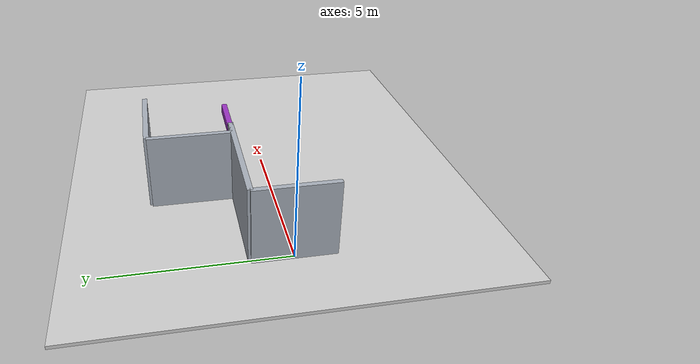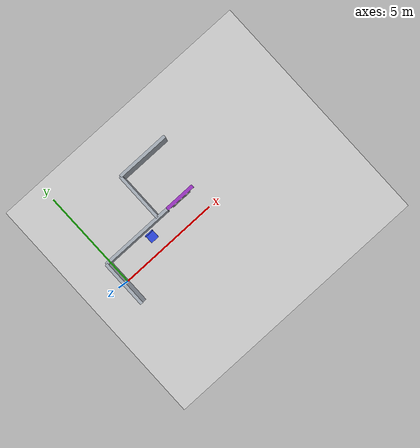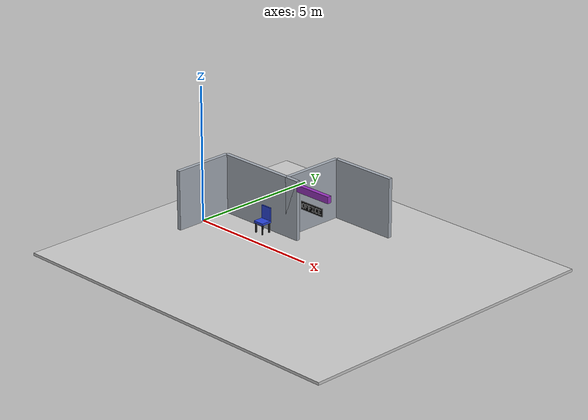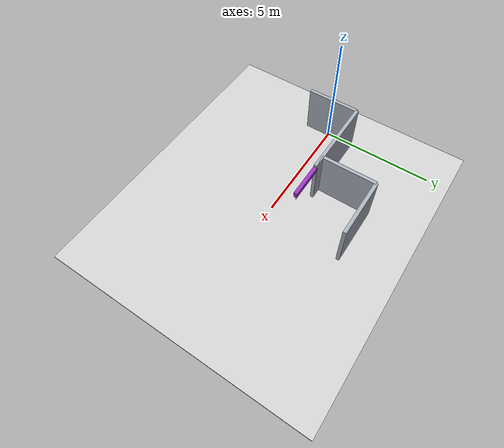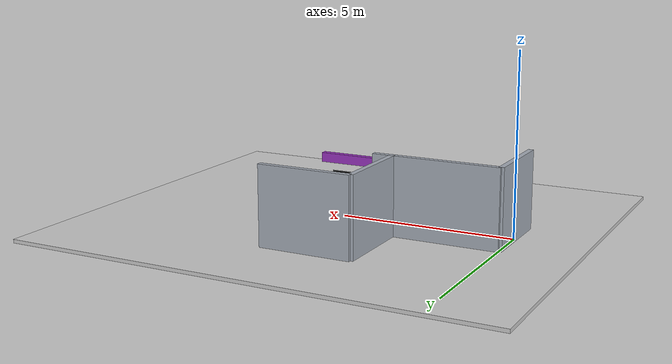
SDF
<sdf version="1.9">
 <world name="default">
  <model name="ground_plane">
   <static>true</static>
   <pose>4.85 0 -0.05 0 0 0</pose>
   <link name="body">
    <collision name="collision"><geometry><box><size>13.7 12 0.1</size></box></geometry></collision>
    <visual name="visual">
     <geometry><box><size>13.7 12 0.1</size></box></geometry>
     <material><ambient>0.8 0.8 0.8 1</ambient><diffuse>0.8 0.8 0.8 1</diffuse></material>
    </visual>
   </link>
  </model>
  <model name="start_wall">
   <static>true</static>
   <pose>0 0 1.1 0 0 0</pose>
   <link name="body">
    <collision name="collision"><geometry><box><size>0.15 2.3 2.2</size></box></geometry></collision>
    <visual name="visual">
     <geometry><box><size>0.15 2.3 2.2</size></box></geometry>
     <material><ambient>0.65 0.68 0.72 1</ambient><diffuse>0.65 0.68 0.72 1</diffuse></material>
    </visual>
   </link>
  </model>
  <model name="hall_1_1">
   <static>true</static>
   <pose>1.775 1.15 1.1 0 0 0</pose>
   <link name="body">
    <collision name="collision"><geometry><box><size>3.55 0.15 2.2</size></box></geometry></collision>
    <visual name="visual">
     <geometry><box><size>3.55 0.15 2.2</size></box></geometry>
     <material><ambient>0.65 0.68 0.72 1</ambient><diffuse>0.65 0.68 0.72 1</diffuse></material>
    </visual>
   </link>
  </model>
  <model name="room_1_1_-1">
   <static>true</static>
   <pose>3.0 2.3499999999999996 1.1 0 0 0</pose>
   <link name="body">
    <collision name="collision"><geometry><box><size>0.15 2.4 2.2</size></box></geometry></collision>
    <visual name="visual">
     <geometry><box><size>0.15 2.4 2.2</size></box></geometry>
     <material><ambient>0.65 0.68 0.72 1</ambient><diffuse>0.65 0.68 0.72 1</diffuse></material>
    </visual>
   </link>
  </model>
  <model name="room_end_1_1">
   <static>true</static>
   <pose>4.3 3.55 1.1 0 0 0</pose>
   <link name="body">
    <collision name="collision"><geometry><box><size>2.6 0.15 2.2</size></box></geometry></collision>
    <visual name="visual">
     <geometry><box><size>2.6 0.15 2.2</size></box></geometry>
     <material><ambient>0.65 0.68 0.72 1</ambient><diffuse>0.65 0.68 0.72 1</diffuse></material>
    </visual>
   </link>
  </model>
  <model name="jamb_1_1_-1">
   <static>true</static>
   <pose>3.275 1.15 1.1 0 0 0</pose>
   <link name="body">
    <collision name="collision"><geometry><box><size>0.55 0.15 2.2</size></box></geometry></collision>
    <visual name="visual">
     <geometry><box><size>0.55 0.15 2.2</size></box></geometry>
     <material><ambient>0.65 0.68 0.72 1</ambient><diffuse>0.65 0.68 0.72 1</diffuse></material>
    </visual>
   </link>
  </model>
  <model name="chair_seat">
   <static>true</static>
   <pose>2.2 0.7499999999999999 0.4 0 0 0</pose>
   <link name="body">
    <collision name="collision"><geometry><box><size>0.42 0.42 0.08</size></box></geometry></collision>
    <visual name="visual">
     <geometry><box><size>0.42 0.42 0.08</size></box></geometry>
     <material><ambient>0.16 0.27 0.86 1</ambient><diffuse>0.16 0.27 0.86 1</diffuse></material>
    </visual>
   </link>
  </model>
  <model name="chair_back">
   <static>true</static>
   <pose>2.2 0.94 0.67 0 0 0</pose>
   <link name="body">
    <collision name="collision"><geometry><box><size>0.42 0.05 0.5</size></box></geometry></collision>
    <visual name="visual">
     <geometry><box><size>0.42 0.05 0.5</size></box></geometry>
     <material><ambient>0.16 0.27 0.86 1</ambient><diffuse>0.16 0.27 0.86 1</diffuse></material>
    </visual>
   </link>
  </model>
  <model name="chair_leg_-0.16_-0.16">
   <static>true</static>
   <pose>2.04 0.5899999999999999 0.19 0 0 0</pose>
   <link name="body">
    <collision name="collision"><geometry><box><size>0.04 0.04 0.38</size></box></geometry></collision>
    <visual name="visual">
     <geometry><box><size>0.04 0.04 0.38</size></box></geometry>
     <material><ambient>0.2 0.2 0.2 1</ambient><diffuse>0.2 0.2 0.2 1</diffuse></material>
    </visual>
   </link>
  </model>
  <model name="chair_leg_-0.16_0.16">
   <static>true</static>
   <pose>2.04 0.9099999999999999 0.19 0 0 0</pose>
   <link name="body">
    <collision name="collision"><geometry><box><size>0.04 0.04 0.38</size></box></geometry></collision>
    <visual name="visual">
     <geometry><box><size>0.04 0.04 0.38</size></box></geometry>
     <material><ambient>0.2 0.2 0.2 1</ambient><diffuse>0.2 0.2 0.2 1</diffuse></material>
    </visual>
   </link>
  </model>
  <model name="chair_leg_0.16_-0.16">
   <static>true</static>
   <pose>2.3600000000000003 0.5899999999999999 0.19 0 0 0</pose>
   <link name="body">
    <collision name="collision"><geometry><box><size>0.04 0.04 0.38</size></box></geometry></collision>
    <visual name="visual">
     <geometry><box><size>0.04 0.04 0.38</size></box></geometry>
     <material><ambient>0.2 0.2 0.2 1</ambient><diffuse>0.2 0.2 0.2 1</diffuse></material>
    </visual>
   </link>
  </model>
  <model name="chair_leg_0.16_0.16">
   <static>true</static>
   <pose>2.3600000000000003 0.9099999999999999 0.19 0 0 0</pose>
   <link name="body">
    <collision name="collision"><geometry><box><size>0.04 0.04 0.38</size></box></geometry></collision>
    <visual name="visual">
     <geometry><box><size>0.04 0.04 0.38</size></box></geometry>
     <material><ambient>0.2 0.2 0.2 1</ambient><diffuse>0.2 0.2 0.2 1</diffuse></material>
    </visual>
   </link>
  </model>
  <model name="r3geo_base_r006_left_1_lintel">
   <static>true</static>
   <pose>4.3 1.15 1.95 0 0 0</pose>
   <link name="body">
    <collision name="collision"><geometry><box><size>1.5 0.16 0.25</size></box></geometry></collision>
    <visual name="visual">
     <geometry><box><size>1.5 0.16 0.25</size></box></geometry>
     <material><ambient>0.6 0.2 0.75 1</ambient><diffuse>0.6 0.2 0.75 1</diffuse></material>
    </visual>
   </link>
  </model>
  <model name="readable_r3geo_base_r006_left_1_entrance_corridor">
   <static>true</static>
   <pose>4.3 1.05 1.43 0 0 0</pose>
   <link name="lettering">
    <visual name="backboard">
     <geometry><box><size>1.02 0.018 0.3</size></box></geometry>
     <material>
      <ambient>.015 .015 .015 1</ambient>
      <diffuse>.015 .015 .015 1</diffuse>
      <emissive>.015 .015 .015 1</emissive>
     </material>
     <cast_shadows>false</cast_shadows>
    </visual>
    <visual name="letter_0_0_1">
     <pose>-0.416 -0.014 0.078 0 0 0</pose>
     <geometry><box><size>0.024439999999999996 0.008 0.024439999999999996</size></box></geometry>
     <material>
      <ambient>.96 .96 .96 1</ambient>
      <diffuse>.96 .96 .96 1</diffuse>
      <emissive>.96 .96 .96 1</emissive>
     </material>
     <cast_shadows>false</cast_shadows>
    </visual>
    <visual name="letter_0_0_2">
     <pose>-0.39 -0.014 0.078 0 0 0</pose>
     <geometry><box><size>0.024439999999999996 0.008 0.024439999999999996</size></box></geometry>
     <material>
      <ambient>.96 .96 .96 1</ambient>
      <diffuse>.96 .96 .96 1</diffuse>
      <emissive>.96 .96 .96 1</emissive>
     </material>
     <cast_shadows>false</cast_shadows>
    </visual>
    <visual name="letter_0_0_3">
     <pose>-0.364 -0.014 0.078 0 0 0</pose>
     <geometry><box><size>0.024439999999999996 0.008 0.024439999999999996</size></box></geometry>
     <material>
      <ambient>.96 .96 .96 1</ambient>
      <diffuse>.96 .96 .96 1</diffuse>
      <emissive>.96 .96 .96 1</emissive>
     </material>
     <cast_shadows>false</cast_shadows>
    </visual>
    <visual name="letter_0_1_0">
     <pose>-0.442 -0.014 0.052 0 0 0</pose>
     <geometry><box><size>0.024439999999999996 0.008 0.024439999999999996</size></box></geometry>
     <material>
      <ambient>.96 .96 .96 1</ambient>
      <diffuse>.96 .96 .96 1</diffuse>
      <emissive>.96 .96 .96 1</emissive>
     </material>
     <cast_shadows>false</cast_shadows>
    </visual>
    <visual name="letter_0_1_4">
     <pose>-0.338 -0.014 0.052 0 0 0</pose>
     <geometry><box><size>0.024439999999999996 0.008 0.024439999999999996</size></box></geometry>
     <material>
      <ambient>.96 .96 .96 1</ambient>
      <diffuse>.96 .96 .96 1</diffuse>
      <emissive>.96 .96 .96 1</emissive>
     </material>
     <cast_shadows>false</cast_shadows>
    </visual>
    <visual name="letter_0_2_0">
     <pose>-0.442 -0.014 0.026 0 0 0</pose>
     <geometry><box><size>0.024439999999999996 0.008 0.024439999999999996</size></box></geometry>
     <material>
      <ambient>.96 .96 .96 1</ambient>
      <diffuse>.96 .96 .96 1</diffuse>
      <emissive>.96 .96 .96 1</emissive>
     </material>
     <cast_shadows>false</cast_shadows>
    </visual>
    <visual name="letter_0_2_4">
     <pose>-0.338 -0.014 0.026 0 0 0</pose>
     <geometry><box><size>0.024439999999999996 0.008 0.024439999999999996</size></box></geometry>
     <material>
      <ambient>.96 .96 .96 1</ambient>
      <diffuse>.96 .96 .96 1</diffuse>
      <emissive>.96 .96 .96 1</emissive>
     </material>
     <cast_shadows>false</cast_shadows>
    </visual>
    <visual name="letter_0_3_0">
     <pose>-0.442 -0.014 0 0 0 0</pose>
     <geometry><box><size>0.024439999999999996 0.008 0.024439999999999996</size></box></geometry>
     <material>
      <ambient>.96 .96 .96 1</ambient>
      <diffuse>.96 .96 .96 1</diffuse>
      <emissive>.96 .96 .96 1</emissive>
     </material>
     <cast_shadows>false</cast_shadows>
    </visual>
    <visual name="letter_0_3_4">
     <pose>-0.338 -0.014 0 0 0 0</pose>
     <geometry><box><size>0.024439999999999996 0.008 0.024439999999999996</size></box></geometry>
     <material>
      <ambient>.96 .96 .96 1</ambient>
      <diffuse>.96 .96 .96 1</diffuse>
      <emissive>.96 .96 .96 1</emissive>
     </material>
     <cast_shadows>false</cast_shadows>
    </visual>
    <visual name="letter_0_4_0">
     <pose>-0.442 -0.014 -0.026 0 0 0</pose>
     <geometry><box><size>0.024439999999999996 0.008 0.024439999999999996</size></box></geometry>
     <material>
      <ambient>.96 .96 .96 1</ambient>
      <diffuse>.96 .96 .96 1</diffuse>
      <emissive>.96 .96 .96 1</emissive>
     </material>
     <cast_shadows>false</cast_shadows>
    </visual>
    <visual name="letter_0_4_4">
     <pose>-0.338 -0.014 -0.026 0 0 0</pose>
     <geometry><box><size>0.024439999999999996 0.008 0.024439999999999996</size></box></geometry>
     <material>
      <ambient>.96 .96 .96 1</ambient>
      <diffuse>.96 .96 .96 1</diffuse>
      <emissive>.96 .96 .96 1</emissive>
     </material>
     <cast_shadows>false</cast_shadows>
    </visual>
    <visual name="letter_0_5_0">
     <pose>-0.442 -0.014 -0.052 0 0 0</pose>
     <geometry><box><size>0.024439999999999996 0.008 0.024439999999999996</size></box></geometry>
     <material>
      <ambient>.96 .96 .96 1</ambient>
      <diffuse>.96 .96 .96 1</diffuse>
      <emissive>.96 .96 .96 1</emissive>
     </material>
     <cast_shadows>false</cast_shadows>
    </visual>
    <visual name="letter_0_5_4">
     <pose>-0.338 -0.014 -0.052 0 0 0</pose>
     <geometry><box><size>0.024439999999999996 0.008 0.024439999999999996</size></box></geometry>
     <material>
      <ambient>.96 .96 .96 1</ambient>
      <diffuse>.96 .96 .96 1</diffuse>
      <emissive>.96 .96 .96 1</emissive>
     </material>
     <cast_shadows>false</cast_shadows>
    </visual>
    <visual name="letter_0_6_1">
     <pose>-0.416 -0.014 -0.078 0 0 0</pose>
     <geometry><box><size>0.024439999999999996 0.008 0.024439999999999996</size></box></geometry>
     <material>
      <ambient>.96 .96 .96 1</ambient>
      <diffuse>.96 .96 .96 1</diffuse>
      <emissive>.96 .96 .96 1</emissive>
     </material>
     <cast_shadows>false</cast_shadows>
    </visual>
    <visual name="letter_0_6_2">
     <pose>-0.39 -0.014 -0.078 0 0 0</pose>
     <geometry><box><size>0.024439999999999996 0.008 0.024439999999999996</size></box></geometry>
     <material>
      <ambient>.96 .96 .96 1</ambient>
      <diffuse>.96 .96 .96 1</diffuse>
      <emissive>.96 .96 .96 1</emissive>
     </material>
     <cast_shadows>false</cast_shadows>
    </visual>
    <visual name="letter_0_6_3">
     <pose>-0.364 -0.014 -0.078 0 0 0</pose>
     <geometry><box><size>0.024439999999999996 0.008 0.024439999999999996</size></box></geometry>
     <material>
      <ambient>.96 .96 .96 1</ambient>
      <diffuse>.96 .96 .96 1</diffuse>
      <emissive>.96 .96 .96 1</emissive>
     </material>
     <cast_shadows>false</cast_shadows>
    </visual>
    <visual name="letter_1_0_0">
     <pose>-0.286 -0.014 0.078 0 0 0</pose>
     <geometry><box><size>0.024439999999999996 0.008 0.024439999999999996</size></box></geometry>
     <material>
      <ambient>.96 .96 .96 1</ambient>
      <diffuse>.96 .96 .96 1</diffuse>
      <emissive>.96 .96 .96 1</emissive>
     </material>
     <cast_shadows>false</cast_shadows>
    </visual>
    <visual name="letter_1_0_1">
     <pose>-0.26 -0.014 0.078 0 0 0</pose>
     <geometry><box><size>0.024439999999999996 0.008 0.024439999999999996</size></box></geometry>
     <material>
      <ambient>.96 .96 .96 1</ambient>
      <diffuse>.96 .96 .96 1</diffuse>
      <emissive>.96 .96 .96 1</emissive>
     </material>
     <cast_shadows>false</cast_shadows>
    </visual>
    <visual name="letter_1_0_2">
     <pose>-0.234 -0.014 0.078 0 0 0</pose>
     <geometry><box><size>0.024439999999999996 0.008 0.024439999999999996</size></box></geometry>
     <material>
      <ambient>.96 .96 .96 1</ambient>
      <diffuse>.96 .96 .96 1</diffuse>
      <emissive>.96 .96 .96 1</emissive>
     </material>
     <cast_shadows>false</cast_shadows>
    </visual>
    <visual name="letter_1_0_3">
     <pose>-0.208 -0.014 0.078 0 0 0</pose>
     <geometry><box><size>0.024439999999999996 0.008 0.024439999999999996</size></box></geometry>
     <material>
      <ambient>.96 .96 .96 1</ambient>
      <diffuse>.96 .96 .96 1</diffuse>
      <emissive>.96 .96 .96 1</emissive>
     </material>
     <cast_shadows>false</cast_shadows>
    </visual>
    <visual name="letter_1_0_4">
     <pose>-0.182 -0.014 0.078 0 0 0</pose>
     <geometry><box><size>0.024439999999999996 0.008 0.024439999999999996</size></box></geometry>
     <material>
      <ambient>.96 .96 .96 1</ambient>
      <diffuse>.96 .96 .96 1</diffuse>
      <emissive>.96 .96 .96 1</emissive>
     </material>
     <cast_shadows>false</cast_shadows>
    </visual>
    <visual name="letter_1_1_0">
     <pose>-0.286 -0.014 0.052 0 0 0</pose>
     <geometry><box><size>0.024439999999999996 0.008 0.024439999999999996</size></box></geometry>
     <material>
      <ambient>.96 .96 .96 1</ambient>
      <diffuse>.96 .96 .96 1</diffuse>
      <emissive>.96 .96 .96 1</emissive>
     </material>
     <cast_shadows>false</cast_shadows>
    </visual>
    <visual name="letter_1_2_0">
     <pose>-0.286 -0.014 0.026 0 0 0</pose>
     <geometry><box><size>0.024439999999999996 0.008 0.024439999999999996</size></box></geometry>
     <material>
      <ambient>.96 .96 .96 1</ambient>
      <diffuse>.96 .96 .96 1</diffuse>
      <emissive>.96 .96 .96 1</emissive>
     </material>
     <cast_shadows>false</cast_shadows>
    </visual>
    <visual name="letter_1_3_0">
     <pose>-0.286 -0.014 0 0 0 0</pose>
     <geometry><box><size>0.024439999999999996 0.008 0.024439999999999996</size></box></geometry>
     <material>
      <ambient>.96 .96 .96 1</ambient>
      <diffuse>.96 .96 .96 1</diffuse>
      <emissive>.96 .96 .96 1</emissive>
     </material>
     <cast_shadows>false</cast_shadows>
    </visual>
    <visual name="letter_1_3_1">
     <pose>-0.26 -0.014 0 0 0 0</pose>
     <geometry><box><size>0.024439999999999996 0.008 0.024439999999999996</size></box></geometry>
     <material>
      <ambient>.96 .96 .96 1</ambient>
      <diffuse>.96 .96 .96 1</diffuse>
      <emissive>.96 .96 .96 1</emissive>
     </material>
     <cast_shadows>false</cast_shadows>
    </visual>
    <visual name="letter_1_3_2">
     <pose>-0.234 -0.014 0 0 0 0</pose>
     <geometry><box><size>0.024439999999999996 0.008 0.024439999999999996</size></box></geometry>
     <material>
      <ambient>.96 .96 .96 1</ambient>
      <diffuse>.96 .96 .96 1</diffuse>
      <emissive>.96 .96 .96 1</emissive>
     </material>
     <cast_shadows>false</cast_shadows>
    </visual>
    <visual name="letter_1_3_3">
     <pose>-0.208 -0.014 0 0 0 0</pose>
     <geometry><box><size>0.024439999999999996 0.008 0.024439999999999996</size></box></geometry>
     <material>
      <ambient>.96 .96 .96 1</ambient>
      <diffuse>.96 .96 .96 1</diffuse>
      <emissive>.96 .96 .96 1</emissive>
     </material>
     <cast_shadows>false</cast_shadows>
    </visual>
    <visual name="letter_1_4_0">
     <pose>-0.286 -0.014 -0.026 0 0 0</pose>
     <geometry><box><size>0.024439999999999996 0.008 0.024439999999999996</size></box></geometry>
     <material>
      <ambient>.96 .96 .96 1</ambient>
      <diffuse>.96 .96 .96 1</diffuse>
      <emissive>.96 .96 .96 1</emissive>
     </material>
     <cast_shadows>false</cast_shadows>
    </visual>
    <visual name="letter_1_5_0">
     <pose>-0.286 -0.014 -0.052 0 0 0</pose>
     <geometry><box><size>0.024439999999999996 0.008 0.024439999999999996</size></box></geometry>
     <material>
      <ambient>.96 .96 .96 1</ambient>
      <diffuse>.96 .96 .96 1</diffuse>
      <emissive>.96 .96 .96 1</emissive>
     </material>
     <cast_shadows>false</cast_shadows>
    </visual>
    <visual name="letter_1_6_0">
     <pose>-0.286 -0.014 -0.078 0 0 0</pose>
     <geometry><box><size>0.024439999999999996 0.008 0.024439999999999996</size></box></geometry>
     <material>
      <ambient>.96 .96 .96 1</ambient>
      <diffuse>.96 .96 .96 1</diffuse>
      <emissive>.96 .96 .96 1</emissive>
     </material>
     <cast_shadows>false</cast_shadows>
    </visual>
    <visual name="letter_2_0_0">
     <pose>-0.13 -0.014 0.078 0 0 0</pose>
     <geometry><box><size>0.024439999999999996 0.008 0.024439999999999996</size></box></geometry>
     <material>
      <ambient>.96 .96 .96 1</ambient>
      <diffuse>.96 .96 .96 1</diffuse>
      <emissive>.96 .96 .96 1</emissive>
     </material>
     <cast_shadows>false</cast_shadows>
    </visual>
    <visual name="letter_2_0_1">
     <pose>-0.104 -0.014 0.078 0 0 0</pose>
     <geometry><box><size>0.024439999999999996 0.008 0.024439999999999996</size></box></geometry>
     <material>
      <ambient>.96 .96 .96 1</ambient>
      <diffuse>.96 .96 .96 1</diffuse>
      <emissive>.96 .96 .96 1</emissive>
     </material>
     <cast_shadows>false</cast_shadows>
    </visual>
    <visual name="letter_2_0_2">
     <pose>-0.078 -0.014 0.078 0 0 0</pose>
     <geometry><box><size>0.024439999999999996 0.008 0.024439999999999996</size></box></geometry>
     <material>
      <ambient>.96 .96 .96 1</ambient>
      <diffuse>.96 .96 .96 1</diffuse>
      <emissive>.96 .96 .96 1</emissive>
     </material>
     <cast_shadows>false</cast_shadows>
    </visual>
    <visual name="letter_2_0_3">
     <pose>-0.052 -0.014 0.078 0 0 0</pose>
     <geometry><box><size>0.024439999999999996 0.008 0.024439999999999996</size></box></geometry>
     <material>
      <ambient>.96 .96 .96 1</ambient>
      <diffuse>.96 .96 .96 1</diffuse>
      <emissive>.96 .96 .96 1</emissive>
     </material>
     <cast_shadows>false</cast_shadows>
    </visual>
    <visual name="letter_2_0_4">
     <pose>-0.026 -0.014 0.078 0 0 0</pose>
     <geometry><box><size>0.024439999999999996 0.008 0.024439999999999996</size></box></geometry>
     <material>
      <ambient>.96 .96 .96 1</ambient>
      <diffuse>.96 .96 .96 1</diffuse>
      <emissive>.96 .96 .96 1</emissive>
     </material>
     <cast_shadows>false</cast_shadows>
    </visual>
    <visual name="letter_2_1_0">
     <pose>-0.13 -0.014 0.052 0 0 0</pose>
     <geometry><box><size>0.024439999999999996 0.008 0.024439999999999996</size></box></geometry>
     <material>
      <ambient>.96 .96 .96 1</ambient>
      <diffuse>.96 .96 .96 1</diffuse>
      <emissive>.96 .96 .96 1</emissive>
     </material>
     <cast_shadows>false</cast_shadows>
    </visual>
    <visual name="letter_2_2_0">
     <pose>-0.13 -0.014 0.026 0 0 0</pose>
     <geometry><box><size>0.024439999999999996 0.008 0.024439999999999996</size></box></geometry>
     <material>
      <ambient>.96 .96 .96 1</ambient>
      <diffuse>.96 .96 .96 1</diffuse>
      <emissive>.96 .96 .96 1</emissive>
     </material>
     <cast_shadows>false</cast_shadows>
    </visual>
    <visual name="letter_2_3_0">
     <pose>-0.13 -0.014 0 0 0 0</pose>
     <geometry><box><size>0.024439999999999996 0.008 0.024439999999999996</size></box></geometry>
     <material>
      <ambient>.96 .96 .96 1</ambient>
      <diffuse>.96 .96 .96 1</diffuse>
      <emissive>.96 .96 .96 1</emissive>
     </material>
     <cast_shadows>false</cast_shadows>
    </visual>
    <visual name="letter_2_3_1">
     <pose>-0.104 -0.014 0 0 0 0</pose>
     <geometry><box><size>0.024439999999999996 0.008 0.024439999999999996</size></box></geometry>
     <material>
      <ambient>.96 .96 .96 1</ambient>
      <diffuse>.96 .96 .96 1</diffuse>
      <emissive>.96 .96 .96 1</emissive>
     </material>
     <cast_shadows>false</cast_shadows>
    </visual>
    <visual name="letter_2_3_2">
     <pose>-0.078 -0.014 0 0 0 0</pose>
     <geometry><box><size>0.024439999999999996 0.008 0.024439999999999996</size></box></geometry>
     <material>
      <ambient>.96 .96 .96 1</ambient>
      <diffuse>.96 .96 .96 1</diffuse>
      <emissive>.96 .96 .96 1</emissive>
     </material>
     <cast_shadows>false</cast_shadows>
    </visual>
    <visual name="letter_2_3_3">
     <pose>-0.052 -0.014 0 0 0 0</pose>
     <geometry><box><size>0.024439999999999996 0.008 0.024439999999999996</size></box></geometry>
     <material>
      <ambient>.96 .96 .96 1</ambient>
      <diffuse>.96 .96 .96 1</diffuse>
      <emissive>.96 .96 .96 1</emissive>
     </material>
     <cast_shadows>false</cast_shadows>
    </visual>
    <visual name="letter_2_4_0">
     <pose>-0.13 -0.014 -0.026 0 0 0</pose>
     <geometry><box><size>0.024439999999999996 0.008 0.024439999999999996</size></box></geometry>
     <material>
      <ambient>.96 .96 .96 1</ambient>
      <diffuse>.96 .96 .96 1</diffuse>
      <emissive>.96 .96 .96 1</emissive>
     </material>
     <cast_shadows>false</cast_shadows>
    </visual>
    <visual name="letter_2_5_0">
     <pose>-0.13 -0.014 -0.052 0 0 0</pose>
     <geometry><box><size>0.024439999999999996 0.008 0.024439999999999996</size></box></geometry>
     <material>
      <ambient>.96 .96 .96 1</ambient>
      <diffuse>.96 .96 .96 1</diffuse>
      <emissive>.96 .96 .96 1</emissive>
     </material>
     <cast_shadows>false</cast_shadows>
    </visual>
    <visual name="letter_2_6_0">
     <pose>-0.13 -0.014 -0.078 0 0 0</pose>
     <geometry><box><size>0.024439999999999996 0.008 0.024439999999999996</size></box></geometry>
     <material>
      <ambient>.96 .96 .96 1</ambient>
      <diffuse>.96 .96 .96 1</diffuse>
      <emissive>.96 .96 .96 1</emissive>
     </material>
     <cast_shadows>false</cast_shadows>
    </visual>
    <visual name="letter_3_0_0">
     <pose>0.026 -0.014 0.078 0 0 0</pose>
     <geometry><box><size>0.024439999999999996 0.008 0.024439999999999996</size></box></geometry>
     <material>
      <ambient>.96 .96 .96 1</ambient>
      <diffuse>.96 .96 .96 1</diffuse>
      <emissive>.96 .96 .96 1</emissive>
     </material>
     <cast_shadows>false</cast_shadows>
    </visual>
    <visual name="letter_3_0_1">
     <pose>0.052 -0.014 0.078 0 0 0</pose>
     <geometry><box><size>0.024439999999999996 0.008 0.024439999999999996</size></box></geometry>
     <material>
      <ambient>.96 .96 .96 1</ambient>
      <diffuse>.96 .96 .96 1</diffuse>
      <emissive>.96 .96 .96 1</emissive>
     </material>
     <cast_shadows>false</cast_shadows>
    </visual>
    <visual name="letter_3_0_2">
     <pose>0.078 -0.014 0.078 0 0 0</pose>
     <geometry><box><size>0.024439999999999996 0.008 0.024439999999999996</size></box></geometry>
     <material>
      <ambient>.96 .96 .96 1</ambient>
      <diffuse>.96 .96 .96 1</diffuse>
      <emissive>.96 .96 .96 1</emissive>
     </material>
     <cast_shadows>false</cast_shadows>
    </visual>
    <visual name="letter_3_0_3">
     <pose>0.104 -0.014 0.078 0 0 0</pose>
     <geometry><box><size>0.024439999999999996 0.008 0.024439999999999996</size></box></geometry>
     <material>
      <ambient>.96 .96 .96 1</ambient>
      <diffuse>.96 .96 .96 1</diffuse>
      <emissive>.96 .96 .96 1</emissive>
     </material>
     <cast_shadows>false</cast_shadows>
    </visual>
    <visual name="letter_3_0_4">
     <pose>0.13 -0.014 0.078 0 0 0</pose>
     <geometry><box><size>0.024439999999999996 0.008 0.024439999999999996</size></box></geometry>
     <material>
      <ambient>.96 .96 .96 1</ambient>
      <diffuse>.96 .96 .96 1</diffuse>
      <emissive>.96 .96 .96 1</emissive>
     </material>
     <cast_shadows>false</cast_shadows>
    </visual>
    <visual name="letter_3_1_2">
     <pose>0.078 -0.014 0.052 0 0 0</pose>
     <geometry><box><size>0.024439999999999996 0.008 0.024439999999999996</size></box></geometry>
     <material>
      <ambient>.96 .96 .96 1</ambient>
      <diffuse>.96 .96 .96 1</diffuse>
      <emissive>.96 .96 .96 1</emissive>
     </material>
     <cast_shadows>false</cast_shadows>
    </visual>
    <visual name="letter_3_2_2">
     <pose>0.078 -0.014 0.026 0 0 0</pose>
     <geometry><box><size>0.024439999999999996 0.008 0.024439999999999996</size></box></geometry>
     <material>
      <ambient>.96 .96 .96 1</ambient>
      <diffuse>.96 .96 .96 1</diffuse>
      <emissive>.96 .96 .96 1</emissive>
     </material>
     <cast_shadows>false</cast_shadows>
    </visual>
    <visual name="letter_3_3_2">
     <pose>0.078 -0.014 0 0 0 0</pose>
     <geometry><box><size>0.024439999999999996 0.008 0.024439999999999996</size></box></geometry>
     <material>
      <ambient>.96 .96 .96 1</ambient>
      <diffuse>.96 .96 .96 1</diffuse>
      <emissive>.96 .96 .96 1</emissive>
     </material>
     <cast_shadows>false</cast_shadows>
    </visual>
    <visual name="letter_3_4_2">
     <pose>0.078 -0.014 -0.026 0 0 0</pose>
     <geometry><box><size>0.024439999999999996 0.008 0.024439999999999996</size></box></geometry>
     <material>
      <ambient>.96 .96 .96 1</ambient>
      <diffuse>.96 .96 .96 1</diffuse>
      <emissive>.96 .96 .96 1</emissive>
     </material>
     <cast_shadows>false</cast_shadows>
    </visual>
    <visual name="letter_3_5_2">
     <pose>0.078 -0.014 -0.052 0 0 0</pose>
     <geometry><box><size>0.024439999999999996 0.008 0.024439999999999996</size></box></geometry>
     <material>
      <ambient>.96 .96 .96 1</ambient>
      <diffuse>.96 .96 .96 1</diffuse>
      <emissive>.96 .96 .96 1</emissive>
     </material>
     <cast_shadows>false</cast_shadows>
    </visual>
    <visual name="letter_3_6_0">
     <pose>0.026 -0.014 -0.078 0 0 0</pose>
     <geometry><box><size>0.024439999999999996 0.008 0.024439999999999996</size></box></geometry>
     <material>
      <ambient>.96 .96 .96 1</ambient>
      <diffuse>.96 .96 .96 1</diffuse>
      <emissive>.96 .96 .96 1</emissive>
     </material>
     <cast_shadows>false</cast_shadows>
    </visual>
    <visual name="letter_3_6_1">
     <pose>0.052 -0.014 -0.078 0 0 0</pose>
     <geometry><box><size>0.024439999999999996 0.008 0.024439999999999996</size></box></geometry>
     <material>
      <ambient>.96 .96 .96 1</ambient>
      <diffuse>.96 .96 .96 1</diffuse>
      <emissive>.96 .96 .96 1</emissive>
     </material>
     <cast_shadows>false</cast_shadows>
    </visual>
    <visual name="letter_3_6_2">
     <pose>0.078 -0.014 -0.078 0 0 0</pose>
     <geometry><box><size>0.024439999999999996 0.008 0.024439999999999996</size></box></geometry>
     <material>
      <ambient>.96 .96 .96 1</ambient>
      <diffuse>.96 .96 .96 1</diffuse>
      <emissive>.96 .96 .96 1</emissive>
     </material>
     <cast_shadows>false</cast_shadows>
    </visual>
    <visual name="letter_3_6_3">
     <pose>0.104 -0.014 -0.078 0 0 0</pose>
     <geometry><box><size>0.024439999999999996 0.008 0.024439999999999996</size></box></geometry>
     <material>
      <ambient>.96 .96 .96 1</ambient>
      <diffuse>.96 .96 .96 1</diffuse>
      <emissive>.96 .96 .96 1</emissive>
     </material>
     <cast_shadows>false</cast_shadows>
    </visual>
    <visual name="letter_3_6_4">
     <pose>0.13 -0.014 -0.078 0 0 0</pose>
     <geometry><box><size>0.024439999999999996 0.008 0.024439999999999996</size></box></geometry>
     <material>
      <ambient>.96 .96 .96 1</ambient>
      <diffuse>.96 .96 .96 1</diffuse>
      <emissive>.96 .96 .96 1</emissive>
     </material>
     <cast_shadows>false</cast_shadows>
    </visual>
    <visual name="letter_4_0_1">
     <pose>0.208 -0.014 0.078 0 0 0</pose>
     <geometry><box><size>0.024439999999999996 0.008 0.024439999999999996</size></box></geometry>
     <material>
      <ambient>.96 .96 .96 1</ambient>
      <diffuse>.96 .96 .96 1</diffuse>
      <emissive>.96 .96 .96 1</emissive>
     </material>
     <cast_shadows>false</cast_shadows>
    </visual>
    <visual name="letter_4_0_2">
     <pose>0.234 -0.014 0.078 0 0 0</pose>
     <geometry><box><size>0.024439999999999996 0.008 0.024439999999999996</size></box></geometry>
     <material>
      <ambient>.96 .96 .96 1</ambient>
      <diffuse>.96 .96 .96 1</diffuse>
      <emissive>.96 .96 .96 1</emissive>
     </material>
     <cast_shadows>false</cast_shadows>
    </visual>
    <visual name="letter_4_0_3">
     <pose>0.26 -0.014 0.078 0 0 0</pose>
     <geometry><box><size>0.024439999999999996 0.008 0.024439999999999996</size></box></geometry>
     <material>
      <ambient>.96 .96 .96 1</ambient>
      <diffuse>.96 .96 .96 1</diffuse>
      <emissive>.96 .96 .96 1</emissive>
     </material>
     <cast_shadows>false</cast_shadows>
    </visual>
    <visual name="letter_4_0_4">
     <pose>0.286 -0.014 0.078 0 0 0</pose>
     <geometry><box><size>0.024439999999999996 0.008 0.024439999999999996</size></box></geometry>
     <material>
      <ambient>.96 .96 .96 1</ambient>
      <diffuse>.96 .96 .96 1</diffuse>
      <emissive>.96 .96 .96 1</emissive>
     </material>
     <cast_shadows>false</cast_shadows>
    </visual>
    <visual name="letter_4_1_0">
     <pose>0.182 -0.014 0.052 0 0 0</pose>
     <geometry><box><size>0.024439999999999996 0.008 0.024439999999999996</size></box></geometry>
     <material>
      <ambient>.96 .96 .96 1</ambient>
      <diffuse>.96 .96 .96 1</diffuse>
      <emissive>.96 .96 .96 1</emissive>
     </material>
     <cast_shadows>false</cast_shadows>
    </visual>
    <visual name="letter_4_2_0">
     <pose>0.182 -0.014 0.026 0 0 0</pose>
     <geometry><box><size>0.024439999999999996 0.008 0.024439999999999996</size></box></geometry>
     <material>
      <ambient>.96 .96 .96 1</ambient>
      <diffuse>.96 .96 .96 1</diffuse>
      <emissive>.96 .96 .96 1</emissive>
     </material>
     <cast_shadows>false</cast_shadows>
    </visual>
    <visual name="letter_4_3_0">
     <pose>0.182 -0.014 0 0 0 0</pose>
     <geometry><box><size>0.024439999999999996 0.008 0.024439999999999996</size></box></geometry>
     <material>
      <ambient>.96 .96 .96 1</ambient>
      <diffuse>.96 .96 .96 1</diffuse>
      <emissive>.96 .96 .96 1</emissive>
     </material>
     <cast_shadows>false</cast_shadows>
    </visual>
    <visual name="letter_4_4_0">
     <pose>0.182 -0.014 -0.026 0 0 0</pose>
     <geometry><box><size>0.024439999999999996 0.008 0.024439999999999996</size></box></geometry>
     <material>
      <ambient>.96 .96 .96 1</ambient>
      <diffuse>.96 .96 .96 1</diffuse>
      <emissive>.96 .96 .96 1</emissive>
     </material>
     <cast_shadows>false</cast_shadows>
    </visual>
    <visual name="letter_4_5_0">
     <pose>0.182 -0.014 -0.052 0 0 0</pose>
     <geometry><box><size>0.024439999999999996 0.008 0.024439999999999996</size></box></geometry>
     <material>
      <ambient>.96 .96 .96 1</ambient>
      <diffuse>.96 .96 .96 1</diffuse>
      <emissive>.96 .96 .96 1</emissive>
     </material>
     <cast_shadows>false</cast_shadows>
    </visual>
    <visual name="letter_4_6_1">
     <pose>0.208 -0.014 -0.078 0 0 0</pose>
     <geometry><box><size>0.024439999999999996 0.008 0.024439999999999996</size></box></geometry>
     <material>
      <ambient>.96 .96 .96 1</ambient>
      <diffuse>.96 .96 .96 1</diffuse>
      <emissive>.96 .96 .96 1</emissive>
     </material>
     <cast_shadows>false</cast_shadows>
    </visual>
    <visual name="letter_4_6_2">
     <pose>0.234 -0.014 -0.078 0 0 0</pose>
     <geometry><box><size>0.024439999999999996 0.008 0.024439999999999996</size></box></geometry>
     <material>
      <ambient>.96 .96 .96 1</ambient>
      <diffuse>.96 .96 .96 1</diffuse>
      <emissive>.96 .96 .96 1</emissive>
     </material>
     <cast_shadows>false</cast_shadows>
    </visual>
    <visual name="letter_4_6_3">
     <pose>0.26 -0.014 -0.078 0 0 0</pose>
     <geometry><box><size>0.024439999999999996 0.008 0.024439999999999996</size></box></geometry>
     <material>
      <ambient>.96 .96 .96 1</ambient>
      <diffuse>.96 .96 .96 1</diffuse>
      <emissive>.96 .96 .96 1</emissive>
     </material>
     <cast_shadows>false</cast_shadows>
    </visual>
    <visual name="letter_4_6_4">
     <pose>0.286 -0.014 -0.078 0 0 0</pose>
     <geometry><box><size>0.024439999999999996 0.008 0.024439999999999996</size></box></geometry>
     <material>
      <ambient>.96 .96 .96 1</ambient>
      <diffuse>.96 .96 .96 1</diffuse>
      <emissive>.96 .96 .96 1</emissive>
     </material>
     <cast_shadows>false</cast_shadows>
    </visual>
    <visual name="letter_5_0_0">
     <pose>0.338 -0.014 0.078 0 0 0</pose>
     <geometry><box><size>0.024439999999999996 0.008 0.024439999999999996</size></box></geometry>
     <material>
      <ambient>.96 .96 .96 1</ambient>
      <diffuse>.96 .96 .96 1</diffuse>
      <emissive>.96 .96 .96 1</emissive>
     </material>
     <cast_shadows>false</cast_shadows>
    </visual>
    <visual name="letter_5_0_1">
     <pose>0.364 -0.014 0.078 0 0 0</pose>
     <geometry><box><size>0.024439999999999996 0.008 0.024439999999999996</size></box></geometry>
     <material>
      <ambient>.96 .96 .96 1</ambient>
      <diffuse>.96 .96 .96 1</diffuse>
      <emissive>.96 .96 .96 1</emissive>
     </material>
     <cast_shadows>false</cast_shadows>
    </visual>
    <visual name="letter_5_0_2">
     <pose>0.39 -0.014 0.078 0 0 0</pose>
     <geometry><box><size>0.024439999999999996 0.008 0.024439999999999996</size></box></geometry>
     <material>
      <ambient>.96 .96 .96 1</ambient>
      <diffuse>.96 .96 .96 1</diffuse>
      <emissive>.96 .96 .96 1</emissive>
     </material>
     <cast_shadows>false</cast_shadows>
    </visual>
    <visual name="letter_5_0_3">
     <pose>0.416 -0.014 0.078 0 0 0</pose>
     <geometry><box><size>0.024439999999999996 0.008 0.024439999999999996</size></box></geometry>
     <material>
      <ambient>.96 .96 .96 1</ambient>
      <diffuse>.96 .96 .96 1</diffuse>
      <emissive>.96 .96 .96 1</emissive>
     </material>
     <cast_shadows>false</cast_shadows>
    </visual>
    <visual name="letter_5_0_4">
     <pose>0.442 -0.014 0.078 0 0 0</pose>
     <geometry><box><size>0.024439999999999996 0.008 0.024439999999999996</size></box></geometry>
     <material>
      <ambient>.96 .96 .96 1</ambient>
      <diffuse>.96 .96 .96 1</diffuse>
      <emissive>.96 .96 .96 1</emissive>
     </material>
     <cast_shadows>false</cast_shadows>
    </visual>
    <visual name="letter_5_1_0">
     <pose>0.338 -0.014 0.052 0 0 0</pose>
     <geometry><box><size>0.024439999999999996 0.008 0.024439999999999996</size></box></geometry>
     <material>
      <ambient>.96 .96 .96 1</ambient>
      <diffuse>.96 .96 .96 1</diffuse>
      <emissive>.96 .96 .96 1</emissive>
     </material>
     <cast_shadows>false</cast_shadows>
    </visual>
    <visual name="letter_5_2_0">
     <pose>0.338 -0.014 0.026 0 0 0</pose>
     <geometry><box><size>0.024439999999999996 0.008 0.024439999999999996</size></box></geometry>
     <material>
      <ambient>.96 .96 .96 1</ambient>
      <diffuse>.96 .96 .96 1</diffuse>
      <emissive>.96 .96 .96 1</emissive>
     </material>
     <cast_shadows>false</cast_shadows>
    </visual>
    <visual name="letter_5_3_0">
     <pose>0.338 -0.014 0 0 0 0</pose>
     <geometry><box><size>0.024439999999999996 0.008 0.024439999999999996</size></box></geometry>
     <material>
      <ambient>.96 .96 .96 1</ambient>
      <diffuse>.96 .96 .96 1</diffuse>
      <emissive>.96 .96 .96 1</emissive>
     </material>
     <cast_shadows>false</cast_shadows>
    </visual>
    <visual name="letter_5_3_1">
     <pose>0.364 -0.014 0 0 0 0</pose>
     <geometry><box><size>0.024439999999999996 0.008 0.024439999999999996</size></box></geometry>
     <material>
      <ambient>.96 .96 .96 1</ambient>
      <diffuse>.96 .96 .96 1</diffuse>
      <emissive>.96 .96 .96 1</emissive>
     </material>
     <cast_shadows>false</cast_shadows>
    </visual>
    <visual name="letter_5_3_2">
     <pose>0.39 -0.014 0 0 0 0</pose>
     <geometry><box><size>0.024439999999999996 0.008 0.024439999999999996</size></box></geometry>
     <material>
      <ambient>.96 .96 .96 1</ambient>
      <diffuse>.96 .96 .96 1</diffuse>
      <emissive>.96 .96 .96 1</emissive>
     </material>
     <cast_shadows>false</cast_shadows>
    </visual>
    <visual name="letter_5_3_3">
     <pose>0.416 -0.014 0 0 0 0</pose>
     <geometry><box><size>0.024439999999999996 0.008 0.024439999999999996</size></box></geometry>
     <material>
      <ambient>.96 .96 .96 1</ambient>
      <diffuse>.96 .96 .96 1</diffuse>
      <emissive>.96 .96 .96 1</emissive>
     </material>
     <cast_shadows>false</cast_shadows>
    </visual>
    <visual name="letter_5_4_0">
     <pose>0.338 -0.014 -0.026 0 0 0</pose>
     <geometry><box><size>0.024439999999999996 0.008 0.024439999999999996</size></box></geometry>
     <material>
      <ambient>.96 .96 .96 1</ambient>
      <diffuse>.96 .96 .96 1</diffuse>
      <emissive>.96 .96 .96 1</emissive>
     </material>
     <cast_shadows>false</cast_shadows>
    </visual>
    <visual name="letter_5_5_0">
     <pose>0.338 -0.014 -0.052 0 0 0</pose>
     <geometry><box><size>0.024439999999999996 0.008 0.024439999999999996</size></box></geometry>
     <material>
      <ambient>.96 .96 .96 1</ambient>
      <diffuse>.96 .96 .96 1</diffuse>
      <emissive>.96 .96 .96 1</emissive>
     </material>
     <cast_shadows>false</cast_shadows>
    </visual>
    <visual name="letter_5_6_0">
     <pose>0.338 -0.014 -0.078 0 0 0</pose>
     <geometry><box><size>0.024439999999999996 0.008 0.024439999999999996</size></box></geometry>
     <material>
      <ambient>.96 .96 .96 1</ambient>
      <diffuse>.96 .96 .96 1</diffuse>
      <emissive>.96 .96 .96 1</emissive>
     </material>
     <cast_shadows>false</cast_shadows>
    </visual>
    <visual name="letter_5_6_1">
     <pose>0.364 -0.014 -0.078 0 0 0</pose>
     <geometry><box><size>0.024439999999999996 0.008 0.024439999999999996</size></box></geometry>
     <material>
      <ambient>.96 .96 .96 1</ambient>
      <diffuse>.96 .96 .96 1</diffuse>
      <emissive>.96 .96 .96 1</emissive>
     </material>
     <cast_shadows>false</cast_shadows>
    </visual>
    <visual name="letter_5_6_2">
     <pose>0.39 -0.014 -0.078 0 0 0</pose>
     <geometry><box><size>0.024439999999999996 0.008 0.024439999999999996</size></box></geometry>
     <material>
      <ambient>.96 .96 .96 1</ambient>
      <diffuse>.96 .96 .96 1</diffuse>
      <emissive>.96 .96 .96 1</emissive>
     </material>
     <cast_shadows>false</cast_shadows>
    </visual>
    <visual name="letter_5_6_3">
     <pose>0.416 -0.014 -0.078 0 0 0</pose>
     <geometry><box><size>0.024439999999999996 0.008 0.024439999999999996</size></box></geometry>
     <material>
      <ambient>.96 .96 .96 1</ambient>
      <diffuse>.96 .96 .96 1</diffuse>
      <emissive>.96 .96 .96 1</emissive>
     </material>
     <cast_shadows>false</cast_shadows>
    </visual>
    <visual name="letter_5_6_4">
     <pose>0.442 -0.014 -0.078 0 0 0</pose>
     <geometry><box><size>0.024439999999999996 0.008 0.024439999999999996</size></box></geometry>
     <material>
      <ambient>.96 .96 .96 1</ambient>
      <diffuse>.96 .96 .96 1</diffuse>
      <emissive>.96 .96 .96 1</emissive>
     </material>
     <cast_shadows>false</cast_shadows>
    </visual>
   </link>
  </model>
 </world>
</sdf>
